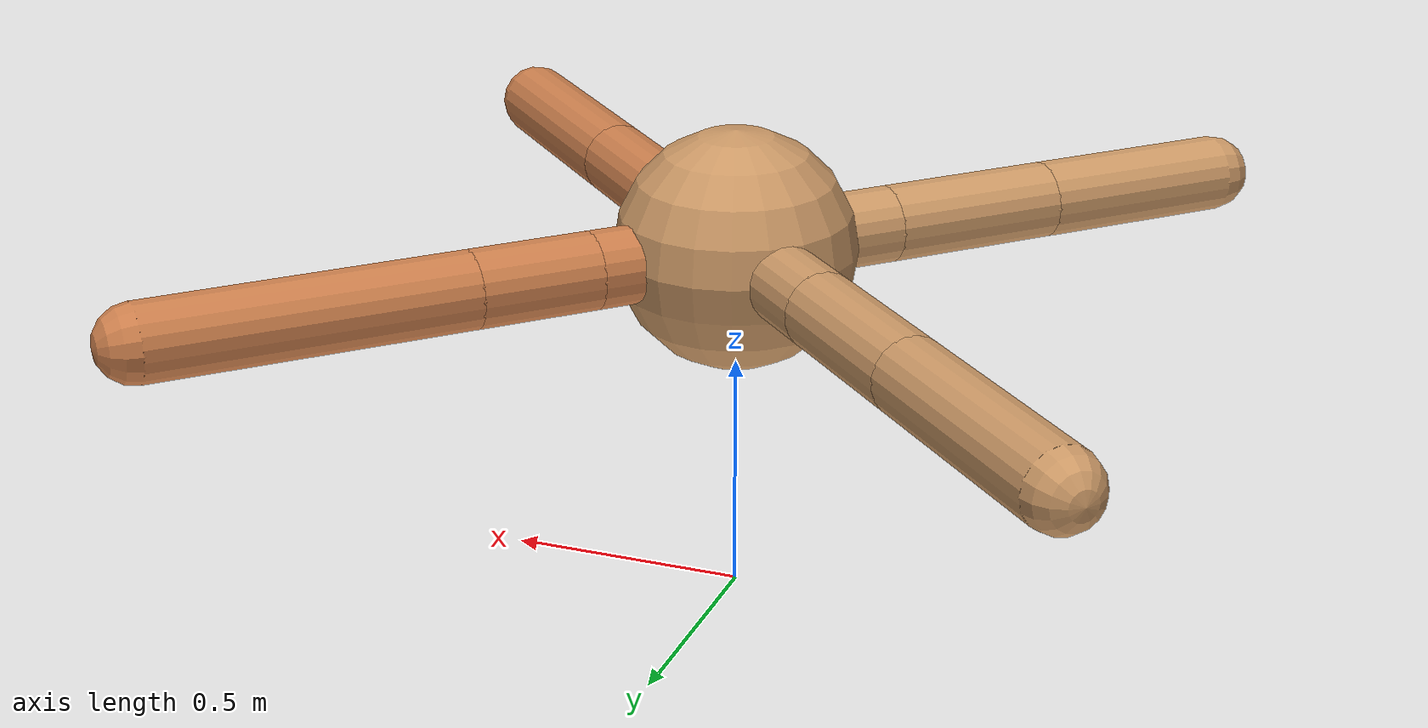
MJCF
<mujoco model="ant">
  <compiler angle="degree" coordinate="local" inertiafromgeom="true" />
  <option integrator="RK4" timestep="0.01" />
  <custom>
    <numeric data="0.0 0.0 0.55 1.0 0.0 0.0 0.0 0.0 1.0 0.0 -1.0 0.0 -1.0 0.0 1.0" name="init_qpos" />
  </custom>
  <default>
    <joint armature="1" damping="1" limited="true" />
    <geom conaffinity="0" condim="3" density="5.0" friction="1.5 0.1 0.1" margin="0.01" rgba="0.8 0.6 0.4 1" />
  </default>
  <worldbody>
    <body name="torso" pos="0 0 0.75">
      <geom name="torso_geom" pos="0 0 0" size="0.25" type="sphere" />

      <body name="front_left_leg" pos="0 0 0">
        <geom fromto="0.0 0.0 0.0 0.2233837001390224 0.2233837001390224 0.0" name="aux_1_geom" size="0.08" type="capsule" rgba=".8 .5 .3 1" />
        <body name="aux_1" pos="0.2233837001390224 0.2233837001390224 0.0">
          <joint axis="0 0 1" name="hip_1" pos="0.0 0.0 0.0" range="-40 40" type="hinge" />
          <geom fromto="0.0 0.0 0.0 0.17904661814684603 0.17904661814684603 0.0" name="left_leg_geom" size="0.08" type="capsule" rgba=".8 .5 .3 1" />
          <body pos="0.17904661814684603 0.17904661814684603 0.0" name="front_left_foot">
            <joint axis="-1 1 0" name="ankle_1" pos="0.0 0.0 0.0" range="30 100" type="hinge" />
            <geom fromto="0.0 0.0 0.0 0.47151822159420065 0.47151822159420065 0.0" name="left_ankle_geom" size="0.08" type="capsule" rgba=".8 .5 .3 1" />
          </body>
        </body>
      </body>
      <body name="front_right_leg" pos="0 0 0">
        <geom fromto="0.0 0.0 0.0 -0.2743528155809794 0.2743528155809794 0.0" name="aux_2_geom" size="0.08" type="capsule" />
        <body name="aux_2" pos="-0.2743528155809794 0.2743528155809794 0.0">
          <joint axis="0 0 1" name="hip_2" pos="0.0 0.0 0.0" range="-40 40" type="hinge" />
          <geom fromto="0.0 0.0 0.0 -0.25013963973826103 0.25013963973826103 0.0" name="right_leg_geom" size="0.08" type="capsule" />
          <body pos="-0.25013963973826103 0.25013963973826103 0.0" name="front_right_foot">
            <joint axis="1 1 0" name="ankle_2" pos="0.0 0.0 0.0" range="-100 -30" type="hinge" />
            <geom fromto="0.0 0.0 0.0 -0.3694215170973872 0.3694215170973872 0.0" name="right_ankle_geom" size="0.08" type="capsule" />
          </body>
        </body>
      </body>
      <body name="left_back_leg" pos="0 0 0">
        <geom fromto="0.0 0.0 0.0 -0.24630208445120869 -0.24630208445120869 0.0" name="aux_3_geom" size="0.08" type="capsule" />
        <body name="aux_3" pos="-0.24630208445120869 -0.24630208445120869 0.0">
          <joint axis="0 0 1" name="hip_3" pos="0.0 0.0 0.0" range="-40 40" type="hinge" />
          <geom fromto="0.0 0.0 0.0 -0.26262228546175265 -0.26262228546175265 0.0" name="back_leg_geom" size="0.08" type="capsule" />
          <body pos="-0.26262228546175265 -0.26262228546175265 0.0" name="left_back_foot">
            <joint axis="-1 1 0" name="ankle_3" pos="0.0 0.0 0.0" range="-100 -30" type="hinge" />
            <geom fromto="0.0 0.0 0.0 -0.3022708028897187 -0.3022708028897187 0.0" name="third_ankle_geom" size="0.08" type="capsule" />
          </body>
        </body>
      </body>
      <body name="right_back_leg" pos="0 0 0">
        <geom fromto="0.0 0.0 0.0 0.20056806878963226 -0.20056806878963226 0.0" name="aux_4_geom" size="0.08" type="capsule" rgba=".8 .5 .3 1" />
        <body name="aux_4" pos="0.20056806878963226 -0.20056806878963226 0.0">
          <joint axis="0 0 1" name="hip_4" pos="0.0 0.0 0.0" range="-40 40" type="hinge" />
          <geom fromto="0.0 0.0 0.0 0.240056752420195 -0.240056752420195 0.0" name="rightback_leg_geom" size="0.08" type="capsule" rgba=".8 .5 .3 1" />
          <body pos="0.240056752420195 -0.240056752420195 0.0" name="right_back_foot">
            <joint axis="1 1 0" name="ankle_4" pos="0.0 0.0 0.0" range="30 100" type="hinge" />
            <geom fromto="0.0 0.0 0.0 0.3486903007306561 -0.3486903007306561 0.0" name="fourth_ankle_geom" size="0.08" type="capsule" rgba=".8 .5 .3 1" />
          </body>
        </body>
      </body>
    </body>
  </worldbody>
  <actuator>
    <motor ctrllimited="true" ctrlrange="-1.0 1.0" joint="hip_4" gear="150" />
    <motor ctrllimited="true" ctrlrange="-1.0 1.0" joint="ankle_4" gear="150" />
    <motor ctrllimited="true" ctrlrange="-1.0 1.0" joint="hip_1" gear="150" />
    <motor ctrllimited="true" ctrlrange="-1.0 1.0" joint="ankle_1" gear="150" />
    <motor ctrllimited="true" ctrlrange="-1.0 1.0" joint="hip_2" gear="150" />
    <motor ctrllimited="true" ctrlrange="-1.0 1.0" joint="ankle_2" gear="150" />
    <motor ctrllimited="true" ctrlrange="-1.0 1.0" joint="hip_3" gear="150" />
    <motor ctrllimited="true" ctrlrange="-1.0 1.0" joint="ankle_3" gear="150" />
  </actuator>
</mujoco>
